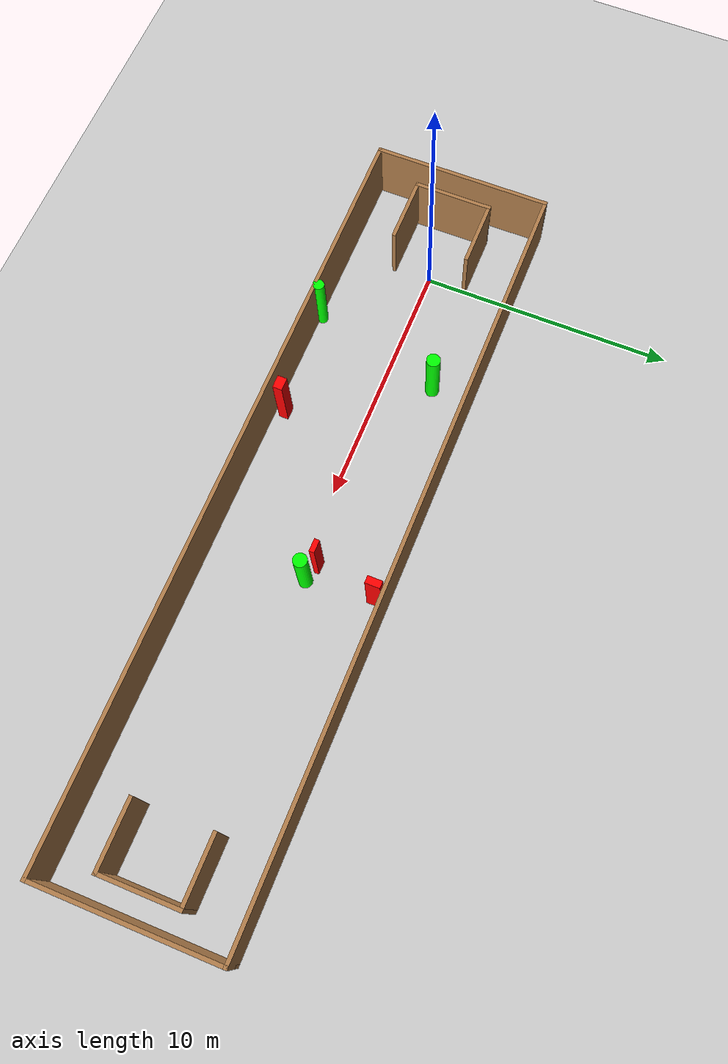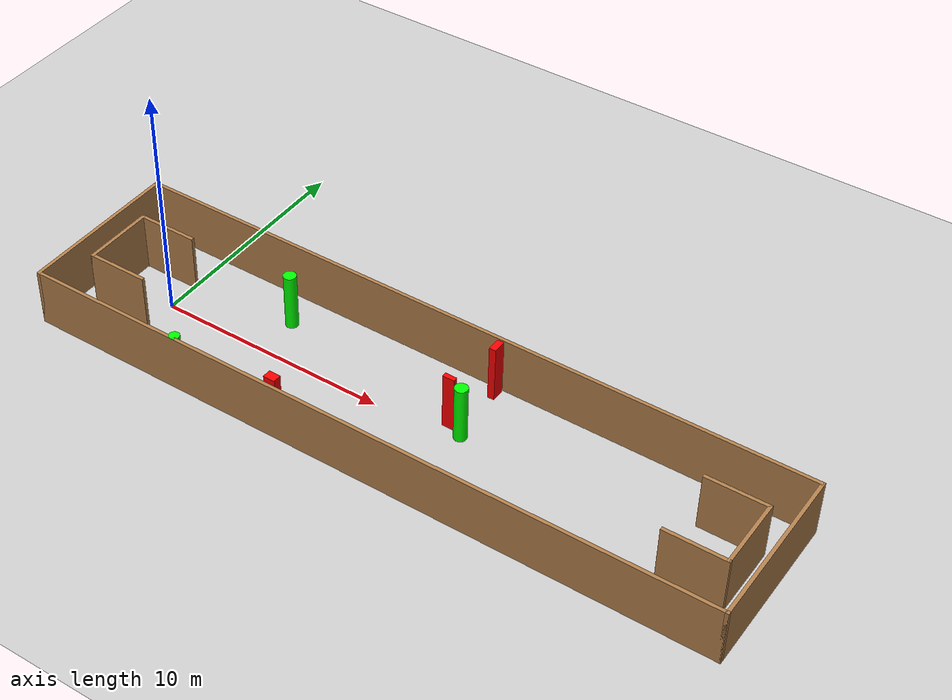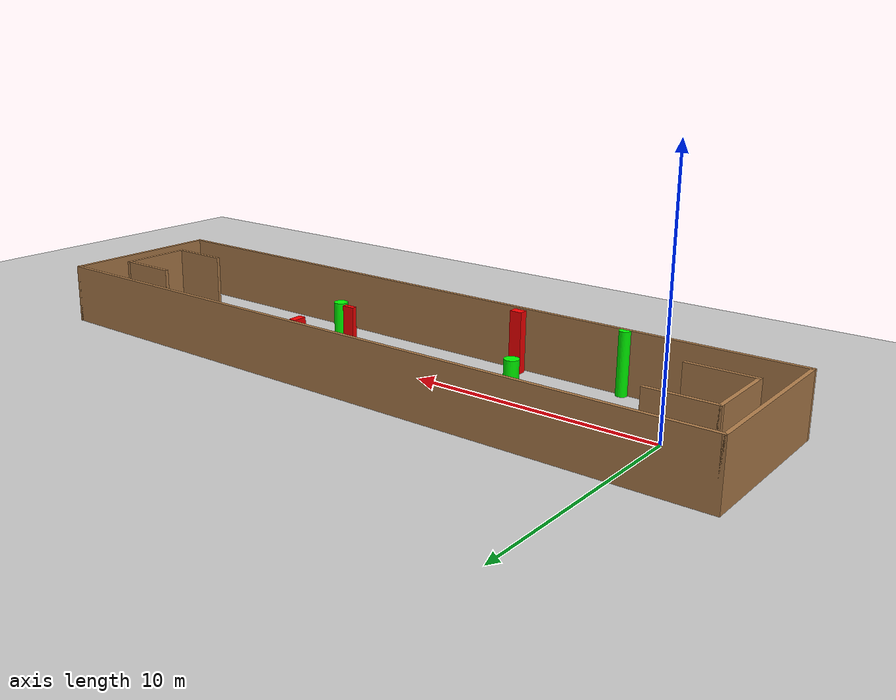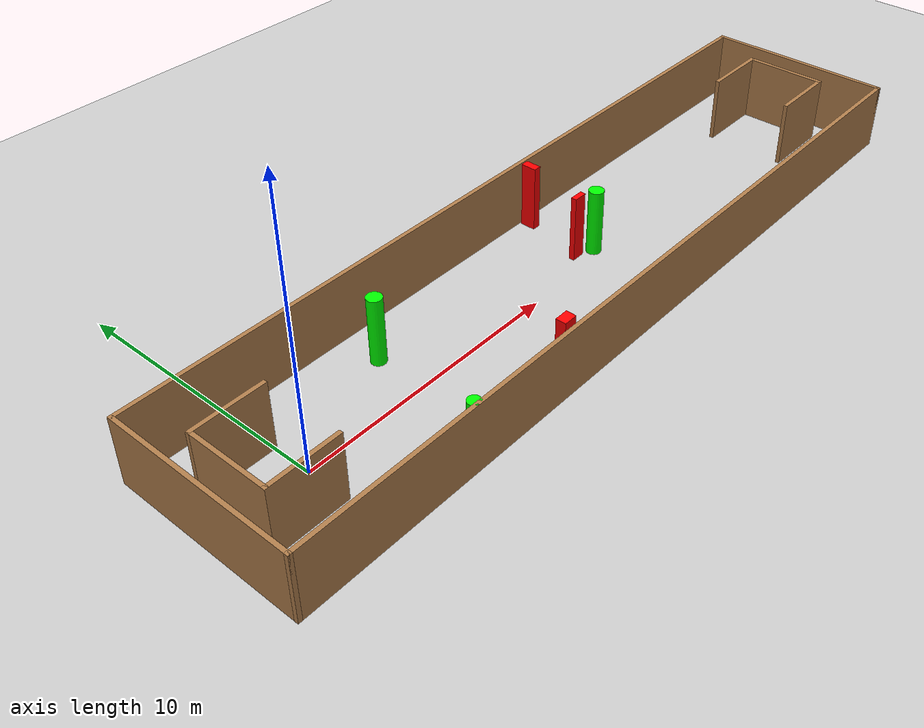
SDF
<sdf version="1.7">
 <world name="default">
  <light name="sun" type="directional">
   <pose>0 0 10 0 -0 0</pose>
   <diffuse>0.8 0.8 0.8 1</diffuse>
   <specular>0.2 0.2 0.2 1</specular>
   <attenuation>
    <range>1000</range>
    <constant>0.9</constant>
    <linear>0.01</linear>
    <quadratic>0.001</quadratic>
   </attenuation>
   <direction>-0.5 0.1 -0.9</direction>
   <spot><inner_angle>0</inner_angle><outer_angle>0</outer_angle><falloff>0</falloff></spot>
  </light>
  <model name="ground_plane">
   <static>1</static>
   <link name="link">
    <collision name="collision">
     <geometry><plane><normal>0 0 1</normal><size>100 100</size></plane></geometry>
     <surface>
      <contact><collide_bitmask>65535</collide_bitmask></contact>
      <friction><ode><mu>100</mu><mu2>50</mu2></ode></friction>
     </surface>
    </collision>
    <visual name="visual">
     <cast_shadows>0</cast_shadows>
     <geometry><plane><normal>0 0 1</normal><size>100 100</size></plane></geometry>
     <material>
      <script><uri>file://media/materials/scripts/gazebo.material</uri><name>Gazebo/Grey</name></script>
     </material>
    </visual>
   </link>
  </model>
  <gravity>0 0 -9.8</gravity>
  <magnetic_field>6e-06 2.3e-05 -4.2e-05</magnetic_field>
  <atmosphere type="adiabatic"/>
  <physics type="ode">
   <max_step_size>0.001</max_step_size>
   <real_time_factor>1</real_time_factor>
   <real_time_update_rate>1000</real_time_update_rate>
  </physics>
  <scene><ambient>0.4 0.4 0.4 1</ambient><background>0.7 0.7 0.7 1</background><shadows>1</shadows></scene>
  <spherical_coordinates>
   <surface_model>EARTH_WGS84</surface_model>
   <latitude_deg>0</latitude_deg>
   <longitude_deg>0</longitude_deg>
   <elevation>0</elevation>
   <heading_deg>0</heading_deg>
  </spherical_coordinates>
  <model name="my_base_walls">
   <link name="Wall_0">
    <collision name="Wall_0_Collision">
     <geometry><box><size>7.15 0.15 2.5</size></box></geometry>
     <pose>0 0 1.25 0 -0 0</pose>
    </collision>
    <visual name="Wall_0_Visual">
     <pose>0 0 1.25 0 -0 0</pose>
     <geometry><box><size>7.15 0.15 2.5</size></box></geometry>
     <material>
      <script><uri>file://media/materials/scripts/gazebo.material</uri><name>Gazebo/Wood</name></script>
      <ambient>1 1 1 1</ambient>
     </material>
     <meta><layer>0</layer></meta>
    </visual>
    <pose>-15 0 0 0 -0 1.5708</pose>
   </link>
   <link name="Wall_10">
    <collision name="Wall_10_Collision">
     <geometry><box><size>2.65 0.15 2.5</size></box></geometry>
     <pose>0 0 1.25 0 -0 0</pose>
    </collision>
    <visual name="Wall_10_Visual">
     <pose>0 0 1.25 0 -0 0</pose>
     <geometry><box><size>2.65 0.15 2.5</size></box></geometry>
     <material>
      <script><uri>file://media/materials/scripts/gazebo.material</uri><name>Gazebo/Wood</name></script>
      <ambient>1 1 1 1</ambient>
     </material>
     <meta><layer>0</layer></meta>
    </visual>
    <pose>-12.75 -1.5 0 0 -0 0</pose>
   </link>
   <link name="Wall_12">
    <collision name="Wall_12_Collision">
     <geometry><box><size>2.65 0.15 2.5</size></box></geometry>
     <pose>0 0 1.25 0 -0 0</pose>
    </collision>
    <visual name="Wall_12_Visual">
     <pose>0 0 1.25 0 -0 0</pose>
     <geometry><box><size>2.65 0.15 2.5</size></box></geometry>
     <material>
      <script><uri>file://media/materials/scripts/gazebo.material</uri><name>Gazebo/Wood</name></script>
      <ambient>1 1 1 1</ambient>
     </material>
     <meta><layer>0</layer></meta>
    </visual>
    <pose>-12.75 1.5 0 0 -0 0</pose>
   </link>
   <link name="Wall_14">
    <collision name="Wall_14_Collision">
     <geometry><box><size>3.15 0.15 2.5</size></box></geometry>
     <pose>0 0 1.25 0 -0 0</pose>
    </collision>
    <visual name="Wall_14_Visual">
     <pose>0 0 1.25 0 -0 0</pose>
     <geometry><box><size>3.15 0.15 2.5</size></box></geometry>
     <material>
      <script><uri>file://media/materials/scripts/gazebo.material</uri><name>Gazebo/Wood</name></script>
      <ambient>1 1 1 1</ambient>
     </material>
     <meta><layer>0</layer></meta>
    </visual>
    <pose>14 0 0 0 -0 -1.5708</pose>
   </link>
   <link name="Wall_15">
    <collision name="Wall_15_Collision">
     <geometry><box><size>2.65 0.15 2.5</size></box></geometry>
     <pose>0 0 1.25 0 -0 0</pose>
    </collision>
    <visual name="Wall_15_Visual">
     <pose>0 0 1.25 0 -0 0</pose>
     <geometry><box><size>2.65 0.15 2.5</size></box></geometry>
     <material>
      <script><uri>file://media/materials/scripts/gazebo.material</uri><name>Gazebo/Wood</name></script>
      <ambient>1 1 1 1</ambient>
     </material>
     <meta><layer>0</layer></meta>
    </visual>
    <pose>12.75 -1.5 0 0 -0 3.14159</pose>
   </link>
   <link name="Wall_17">
    <collision name="Wall_17_Collision">
     <geometry><box><size>2.65 0.15 2.5</size></box></geometry>
     <pose>0 0 1.25 0 -0 0</pose>
    </collision>
    <visual name="Wall_17_Visual">
     <pose>0 0 1.25 0 -0 0</pose>
     <geometry><box><size>2.65 0.15 2.5</size></box></geometry>
     <material>
      <script><uri>file://media/materials/scripts/gazebo.material</uri><name>Gazebo/Wood</name></script>
      <ambient>1 1 1 1</ambient>
     </material>
     <meta><layer>0</layer></meta>
    </visual>
    <pose>12.75 1.5 0 0 -0 3.14159</pose>
   </link>
   <link name="Wall_2">
    <collision name="Wall_2_Collision">
     <geometry><box><size>30.15 0.15 2.5</size></box></geometry>
     <pose>0 0 1.25 0 -0 0</pose>
    </collision>
    <visual name="Wall_2_Visual">
     <pose>0 0 1.25 0 -0 0</pose>
     <geometry><box><size>30.15 0.15 2.5</size></box></geometry>
     <material>
      <script><uri>file://media/materials/scripts/gazebo.material</uri><name>Gazebo/Wood</name></script>
      <ambient>1 1 1 1</ambient>
     </material>
     <meta><layer>0</layer></meta>
    </visual>
    <pose>-0 -3.5 0 0 -0 0</pose>
   </link>
   <link name="Wall_4">
    <collision name="Wall_4_Collision">
     <geometry><box><size>30.15 0.15 2.5</size></box></geometry>
     <pose>0 0 1.25 0 -0 0</pose>
    </collision>
    <visual name="Wall_4_Visual">
     <pose>0 0 1.25 0 -0 0</pose>
     <geometry><box><size>30.15 0.15 2.5</size></box></geometry>
     <material>
      <script><uri>file://media/materials/scripts/gazebo.material</uri><name>Gazebo/Wood</name></script>
      <ambient>1 1 1 1</ambient>
     </material>
     <meta><layer>0</layer></meta>
    </visual>
    <pose>-0 3.5 0 0 -0 0</pose>
   </link>
   <link name="Wall_6">
    <collision name="Wall_6_Collision">
     <geometry><box><size>7.15 0.15 2.5</size></box></geometry>
     <pose>0 0 1.25 0 -0 0</pose>
    </collision>
    <visual name="Wall_6_Visual">
     <pose>0 0 1.25 0 -0 0</pose>
     <geometry><box><size>7.15 0.15 2.5</size></box></geometry>
     <material>
      <script><uri>file://media/materials/scripts/gazebo.material</uri><name>Gazebo/Wood</name></script>
      <ambient>1 1 1 1</ambient>
     </material>
     <meta><layer>0</layer></meta>
    </visual>
    <pose>15 0 0 0 -0 -1.5708</pose>
   </link>
   <link name="Wall_9">
    <collision name="Wall_9_Collision">
     <geometry><box><size>3.15 0.15 2.5</size></box></geometry>
     <pose>0 0 1.25 0 -0 0</pose>
    </collision>
    <visual name="Wall_9_Visual">
     <pose>0 0 1.25 0 -0 0</pose>
     <geometry><box><size>3.15 0.15 2.5</size></box></geometry>
     <material>
      <script><uri>file://media/materials/scripts/gazebo.material</uri><name>Gazebo/Wood</name></script>
      <ambient>1 1 1 1</ambient>
     </material>
     <meta><layer>0</layer></meta>
    </visual>
    <pose>-14 0 0 0 -0 -1.5708</pose>
   </link>
   <static>1</static>
   <pose>11.5 0 0 0 -0 0</pose>
  </model>
  <model name="cylinder1">
   <static>1</static>
   <link name="link">
    <inertial>
     <mass>1</mass>
     <inertia><ixx>0.5</ixx><ixy>0</ixy><ixz>0</ixz><iyy>0.5</iyy><iyz>0</iyz><izz>1</izz></inertia>
    </inertial>
    <collision name="collision">
     <geometry><cylinder><radius>0.2706740748662394</radius><length>2.5</length></cylinder></geometry>
    </collision>
    <visual name="visual">
     <geometry><cylinder><radius>0.2706740748662394</radius><length>2.5</length></cylinder></geometry>
     <material>
      <ambient>0 1 0 1</ambient>
      <diffuse>0 1 0 1</diffuse>
      <specular>0.1 0.1 0.1 1</specular>
      <emissive>0 0 0 0</emissive>
     </material>
    </visual>
   </link>
   <pose>4.603292207037235 1.9043210071910481 1.25 0 0 0</pose>
  </model>
  <model name="cylinder2">
   <static>1</static>
   <link name="link">
    <inertial>
     <mass>1</mass>
     <inertia><ixx>0.5</ixx><ixy>0</ixy><ixz>0</ixz><iyy>0.5</iyy><iyz>0</iyz><izz>1</izz></inertia>
    </inertial>
    <collision name="collision">
     <geometry><cylinder><radius>0.22283795000351334</radius><length>2.5</length></cylinder></geometry>
    </collision>
    <visual name="visual">
     <geometry><cylinder><radius>0.22283795000351334</radius><length>2.5</length></cylinder></geometry>
     <material>
      <ambient>0 1 0 1</ambient>
      <diffuse>0 1 0 1</diffuse>
      <specular>0.1 0.1 0.1 1</specular>
      <emissive>0 0 0 0</emissive>
     </material>
    </visual>
   </link>
   <pose>3.1839650448962455 -3.3461424993764584 1.25 0 0 0</pose>
  </model>
  <model name="cylinder3">
   <static>1</static>
   <link name="link">
    <inertial>
     <mass>1</mass>
     <inertia><ixx>0.5</ixx><ixy>0</ixy><ixz>0</ixz><iyy>0.5</iyy><iyz>0</iyz><izz>1</izz></inertia>
    </inertial>
    <collision name="collision">
     <geometry><cylinder><radius>0.27112010954305577</radius><length>2.5</length></cylinder></geometry>
    </collision>
    <visual name="visual">
     <geometry><cylinder><radius>0.27112010954305577</radius><length>2.5</length></cylinder></geometry>
     <material>
      <ambient>0 1 0 1</ambient>
      <diffuse>0 1 0 1</diffuse>
      <specular>0.1 0.1 0.1 1</specular>
      <emissive>0 0 0 0</emissive>
     </material>
    </visual>
   </link>
   <pose>13.603074131515713 0.39151682001929045 1.25 0 0 0</pose>
  </model>
  <model name="box1">
   <static>1</static>
   <link name="link">
    <inertial>
     <mass>1</mass>
     <inertia><ixx>0.083</ixx><ixy>0</ixy><ixz>0</ixz><iyy>0.083</iyy><iyz>0</iyz><izz>0.083</izz></inertia>
    </inertial>
    <collision name="collision">
     <geometry><box><size>0.5049501901165353 0.3682509078602775 2.5</size></box></geometry>
    </collision>
    <visual name="visual">
     <geometry><box><size>0.5049501901165353 0.3682509078602775 2.5</size></box></geometry>
     <material>
      <ambient>1 0 0 1</ambient>
      <diffuse>1 0 0 1</diffuse>
      <specular>0.1 0.1 0.1 1</specular>
      <emissive>0 0 0 0</emissive>
     </material>
    </visual>
    <sensor name="my_contact" type="contact">
     <contact><collision>box_collision</collision><topic>__default_topic__</topic></contact>
    </sensor>
   </link>
   <pose>7.559930921774466 -3.0365203884906053 1.25 0 0 0</pose>
  </model>
  <model name="box2">
   <static>1</static>
   <link name="link">
    <inertial>
     <mass>1</mass>
     <inertia><ixx>0.083</ixx><ixy>0</ixy><ixz>0</ixz><iyy>0.083</iyy><iyz>0</iyz><izz>0.083</izz></inertia>
    </inertial>
    <collision name="collision">
     <geometry><box><size>0.2908228043773429 0.5736111555528329 2.5</size></box></geometry>
    </collision>
    <visual name="visual">
     <geometry><box><size>0.2908228043773429 0.5736111555528329 2.5</size></box></geometry>
     <material>
      <ambient>1 0 0 1</ambient>
      <diffuse>1 0 0 1</diffuse>
      <specular>0.1 0.1 0.1 1</specular>
      <emissive>0 0 0 0</emissive>
     </material>
    </visual>
    <sensor name="my_contact" type="contact">
     <contact><collision>box_collision</collision><topic>__default_topic__</topic></contact>
    </sensor>
   </link>
   <pose>13.392827113167707 3.0750033445006384 1.25 0 0 0</pose>
  </model>
  <model name="box3">
   <static>1</static>
   <link name="link">
    <inertial>
     <mass>1</mass>
     <inertia><ixx>0.083</ixx><ixy>0</ixy><ixz>0</ixz><iyy>0.083</iyy><iyz>0</iyz><izz>0.083</izz></inertia>
    </inertial>
    <collision name="collision">
     <geometry><box><size>0.5024458738397195 0.20050577485237636 2.5</size></box></geometry>
    </collision>
    <visual name="visual">
     <geometry><box><size>0.5024458738397195 0.20050577485237636 2.5</size></box></geometry>
     <material>
      <ambient>1 0 0 1</ambient>
      <diffuse>1 0 0 1</diffuse>
      <specular>0.1 0.1 0.1 1</specular>
      <emissive>0 0 0 0</emissive>
     </material>
    </visual>
    <sensor name="my_contact" type="contact">
     <contact><collision>box_collision</collision><topic>__default_topic__</topic></contact>
    </sensor>
   </link>
   <pose>12.930063839168291 0.6449708794312716 1.25 0 0 0</pose>
  </model>
 </world>
</sdf>
